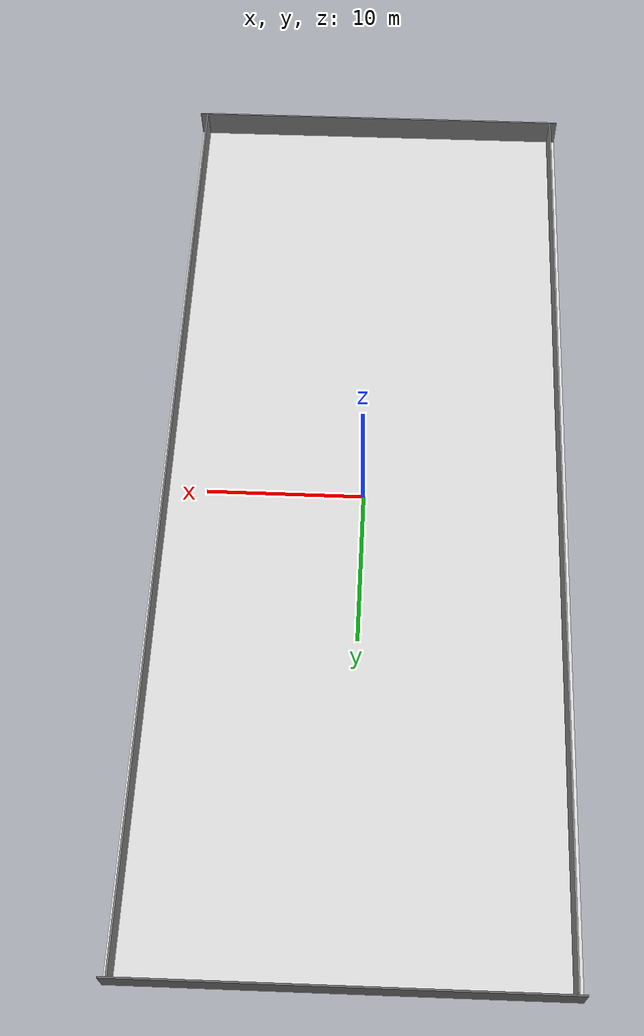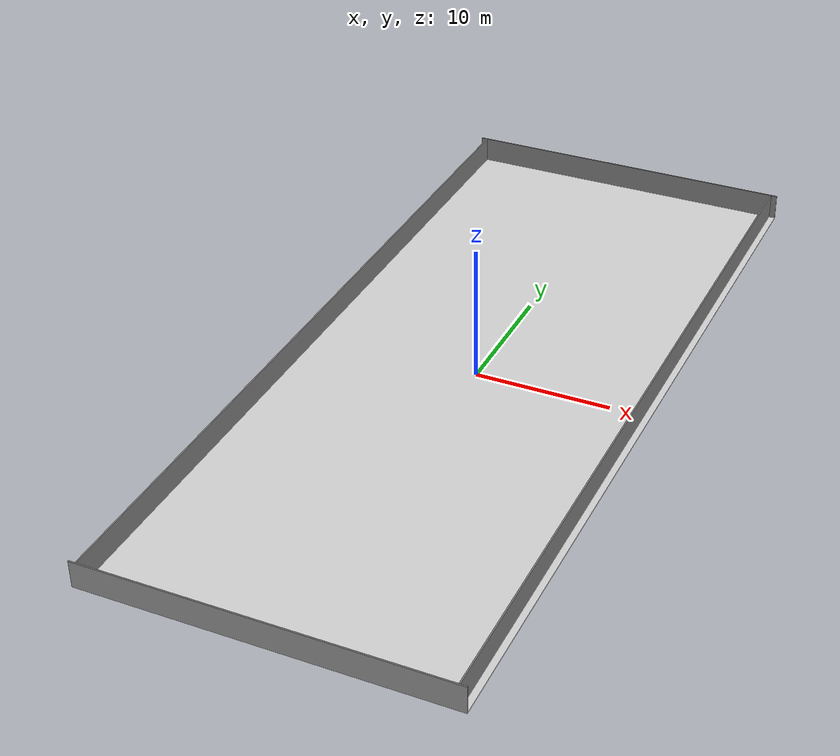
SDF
<?xml version="1.0"?>
<sdf version="1.6">
  <world name="default">

    <scene>
      <shadows>false</shadows>
    </scene>

    <gui fullscreen='0'>
      <camera name='user_camera'>
        <pose frame=''>0.319654 -0.235002 9.29441 0 1.5138 0.009599</pose>
        <view_controller>orbit</view_controller>
        <projection_type>perspective</projection_type>
      </camera>
    </gui>

    <physics type="ode">
      <real_time_update_rate>1000.0</real_time_update_rate>
      <max_step_size>0.001</max_step_size>
      <real_time_factor>1</real_time_factor>
      <ode>
        <solver>
          <type>quick</type>
          <iters>150</iters>
          <precon_iters>0</precon_iters>
          <sor>1.400000</sor>
          <use_dynamic_moi_rescaling>1</use_dynamic_moi_rescaling>
        </solver>
        <constraints>
          <cfm>0.00001</cfm>
          <erp>0.2</erp>
          <contact_max_correcting_vel>2000.000000</contact_max_correcting_vel>
          <contact_surface_layer>0.01000</contact_surface_layer>
        </constraints>
      </ode>
    </physics>

    <model name="rinkrover_rectangle">
      <static>1</static>
      <include>
        <uri>model://rinkrover_rectangle</uri>
      </include>
    </model>

  </world>
</sdf>

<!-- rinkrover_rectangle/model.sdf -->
<sdf version="1.6">
  <model name="rectangle_with_walls">
    <static>true</static>

    <!-- Base rectangle -->
    <link name="base">
      <visual name="base_visual">
        <geometry>
          <box>
            <size>26 61 0.1</size>
          </box>
        </geometry>
        <material>
          <ambient>0.871 0.871 0.871 1</ambient>
          <diffuse>0.871 0.871 0.871 1</diffuse>
          <specular>0.5 0.5 0.5 1</specular>
        </material>
      </visual>
      <collision name="base_collision">
        <geometry>
          <box>
            <size>26 61 0.1</size>
          </box>
        </geometry>
      </collision>
    </link>

    <!-- Wall - North -->
    <link name="north_wall">
      <pose>0 30.5 1 0 0 0</pose>
      <visual name="north_wall_visual">
        <geometry>
          <box>
            <size>26 0.1 2</size>
          </box>
        </geometry>
        <material>
          <ambient>0.42 0.42 0.42 1</ambient>
          <diffuse>0.42 0.42 0.42 1</diffuse>
          <specular>0.3 0.3 0.3 1</specular>
        </material>
      </visual>
      <collision name="north_wall_collision">
        <geometry>
          <box>
            <size>26 0.1 2</size>
          </box>
        </geometry>
      </collision>
    </link>

    <!-- Wall - South -->
    <link name="south_wall">
      <pose>0 -30.5 1 0 0 0</pose>
      <visual name="south_wall_visual">
        <geometry>
          <box>
            <size>26 0.1 2</size>
          </box>
        </geometry>
        <material>
          <ambient>0.5 0.5 0.5 1</ambient>
          <diffuse>0.5 0.5 0.5 1</diffuse>
          <specular>0.3 0.3 0.3 1</specular>
        </material>
      </visual>
      <collision name="south_wall_collision">
        <geometry>
          <box>
            <size>26 0.1 2</size>
          </box>
        </geometry>
      </collision>
    </link>

    <!-- Wall - East -->
    <link name="east_wall">
      <pose>12.5 0 1 0 0 0</pose>
      <visual name="east_wall_visual">
        <geometry>
          <box>
            <size>0.1 61 2</size>
          </box>
        </geometry>
        <material>
          <ambient>0.5 0.5 0.5 1</ambient>
          <diffuse>0.5 0.5 0.5 1</diffuse>
          <specular>0.3 0.3 0.3 1</specular>
        </material>
      </visual>
      <collision name="east_wall_collision">
        <geometry>
          <box>
            <size>0.1 61 2</size>
          </box>
        </geometry>
      </collision>
    </link>

    <!-- Wall - West -->
    <link name="west_wall">
      <pose>-12.5 0 1 0 0 0</pose>
      <visual name="west_wall_visual">
        <geometry>
          <box>
            <size>0.1 61 2</size>
          </box>
        </geometry>
        <material>
          <ambient>0.5 0.5 0.5 1</ambient>
          <diffuse>0.5 0.5 0.5 1</diffuse>
          <specular>0.3 0.3 0.3 1</specular>
        </material>
      </visual>
      <collision name="west_wall_collision">
        <geometry>
          <box>
            <size>0.1 61 2</size>
          </box>
        </geometry>
      </collision>
    </link>

  </model>
</sdf>
